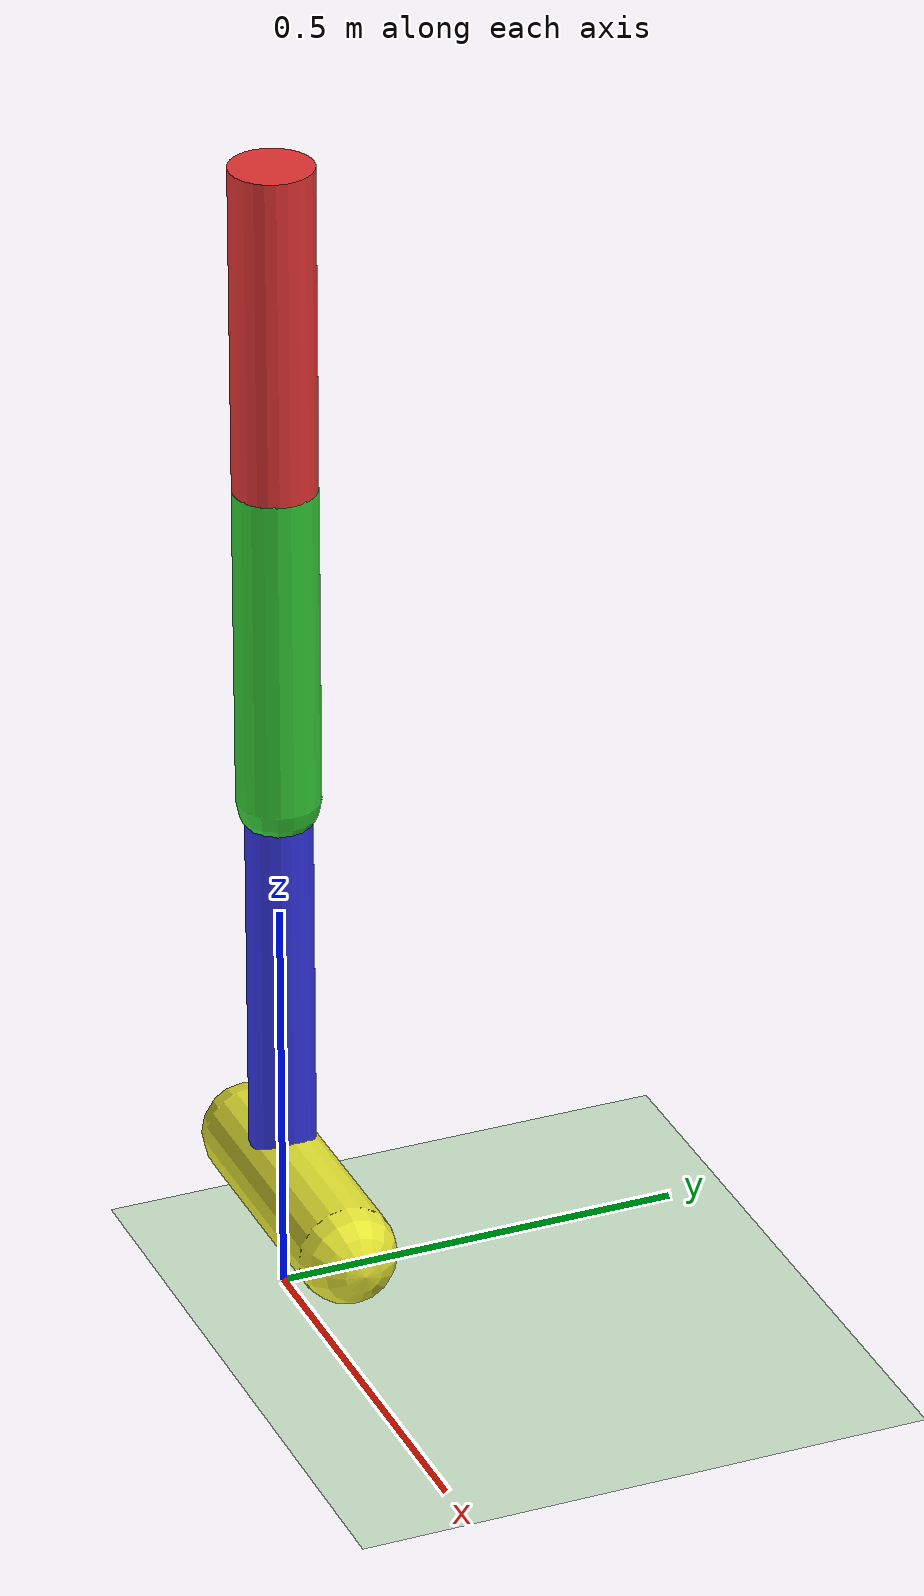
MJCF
<mujoco model="hopper">
    <compiler angle="degree" coordinate="local" inertiafromgeom="true" />
    <option timestep="0.002" gravity="0 0 -9.81" integrator="RK4" />

    <default>
        <joint armature="1" damping="1" limited="true"/>
        <geom conaffinity="1" condim="3" density="5.0" friction="1 0.5 0.5" margin="0.01" rgba="0.8 0.6 0.4 1"/>
        <motor ctrllimited="true" ctrlrange="-1.0 1.0"/>
    </default>

    <asset>
        <texture builtin="checker" height="100" name="texplane" rgb1="0 0 0" rgb2="0.8 0.8 0.8" type="2d" width="100"/>
        <material name="MatPlane" reflectance="0.5" shininess="1" specular="1" texrepeat="60 60" texture="texplane"/>
    </asset>

    <worldbody>
        <!-- Ground Plane -->
        <light cutoff="100" diffuse="1 1 1" dir="-0 0 -1.3" directional="true" exponent="1" pos="0 0 1.3" specular=".1 .1 .1"/>
        <geom conaffinity="1" condim="3" material="MatPlane" name="floor" pos="0 0 0" rgba="0.8 0.9 0.8 1" size="40 40 40" type="plane"/>

        <!-- Hopper Body -->
        <body name="torso" pos="0 0 1.25">
            <camera name="track" mode="trackcom" pos="0 -3 0.3" xyaxes="1 0 0 0 0 1"/>
            <joint armature="0" damping="0" limited="false" margin="0.01" name="root" pos="0 0 0" type="free"/>
            <geom pos="0 0 0" size="0.05 0.2" type="cylinder" rgba="0.9 0.2 0.2 1" />

            <!-- Thigh -->
            <body name="thigh" pos="0 0 -0.2">
                <joint axis="0 1 0" name="thigh_joint" pos="0 0 0" range="-150 0" type="hinge"/>
                <geom fromto="0 0 0 0 0 -0.4" name="thigh_geom" size="0.05" type="capsule" rgba="0.2 0.8 0.2 1" />

                <!-- Leg -->
                <body name="leg" pos="0 0 -0.4">
                    <joint axis="0 1 0" name="leg_joint" pos="0 0 0" range="-150 0" type="hinge"/>
                    <geom fromto="0 0 0 0 0 -0.5" name="leg_geom" size="0.04" type="capsule" rgba="0.2 0.2 0.9 1" />

                    <!-- Foot -->
                    <body name="foot" pos="0 0 -0.5">
                        <joint axis="0 1 0" name="foot_joint" pos="0 0 0" range="-45 45" type="hinge"/>
                        <geom fromto="-0.1 0 0 0.2 0 0" name="foot_geom" size="0.06" type="capsule" rgba="0.9 0.9 0.2 1" />
                    </body>
                </body>
            </body>
        </body>
    </worldbody>

    <!-- Actuators (Motors) attached to the joints -->
    <actuator>
        <motor gear="200.0" joint="thigh_joint" name="thigh_motor"/>
        <motor gear="200.0" joint="leg_joint" name="leg_motor"/>
        <motor gear="100.0" joint="foot_joint" name="foot_motor"/>
    </actuator>
</mujoco>
